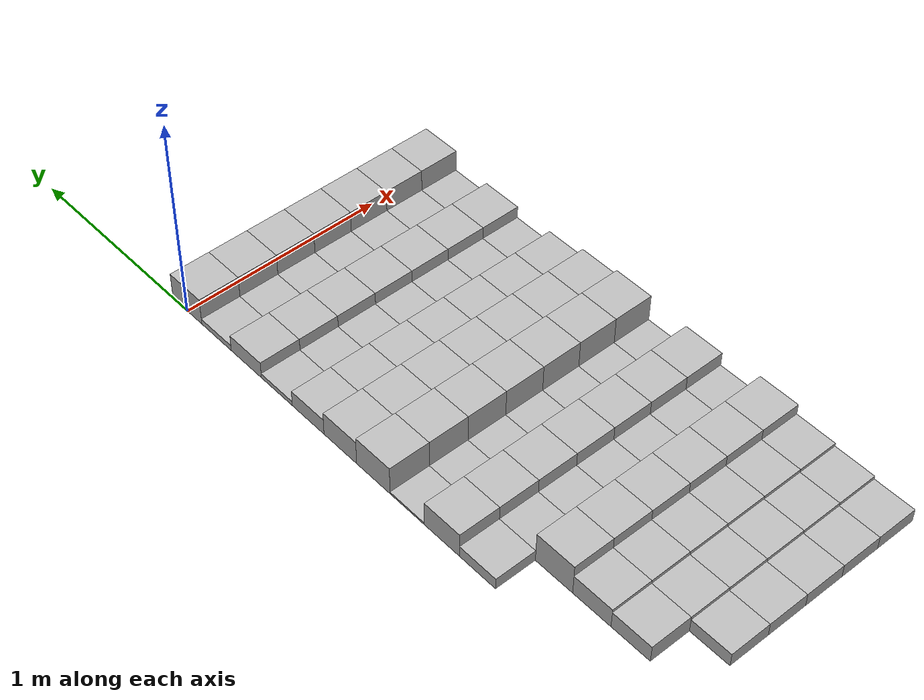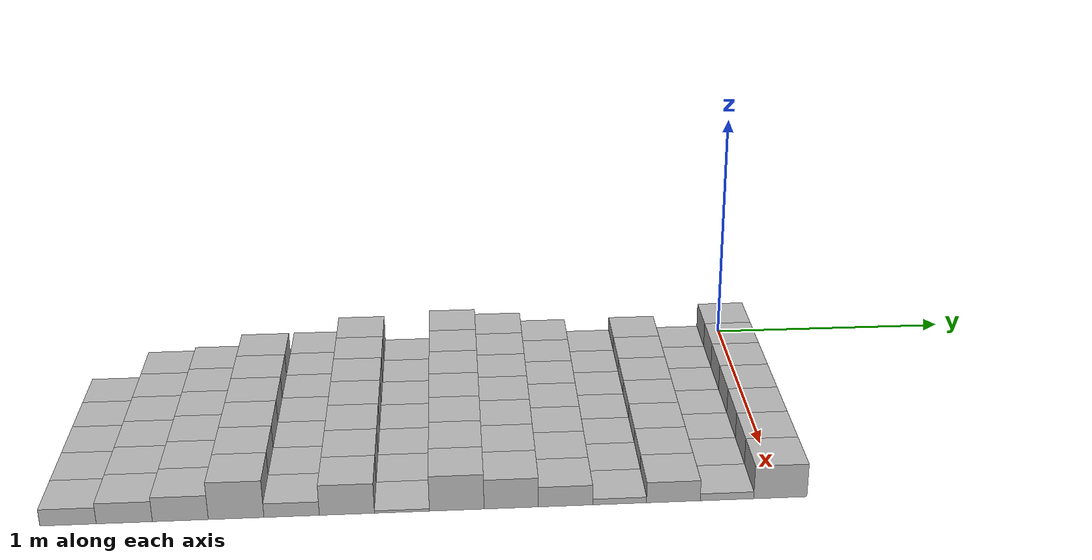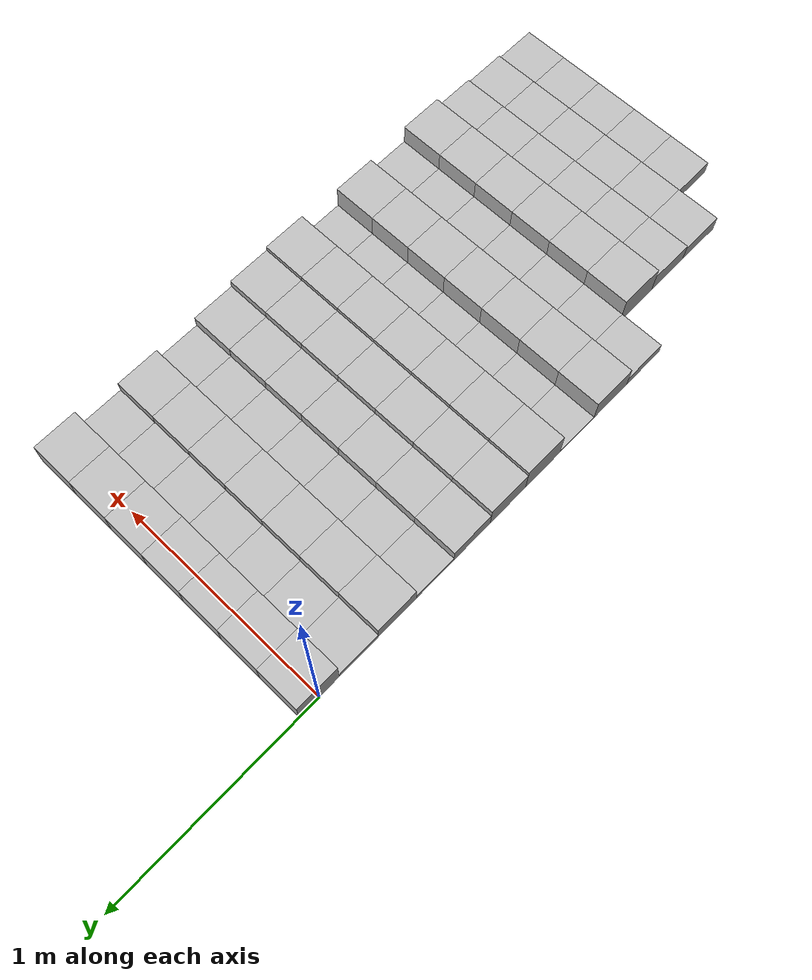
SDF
<sdf version="1.6">
 <model name="Terrain">
  <static>true</static>
  <link name="box_0_7">
   <pose>0.1 0.0 0.0700350616192 0 0 0</pose>
   <inertial>
    <mass>1.0</mass>
    <inertia><ixx>0.0</ixx><ixy>0.0</ixy><ixz>0.0</ixz><iyy>0.0</iyy><iyz>0.0</iyz><izz>0.0</izz></inertia>
   </inertial>
   <collision name="collision"><geometry><box><size>0.2 0.2 0.140070123238</size></box></geometry></collision>
   <visual name="visual"><geometry><box><size>0.2 0.2 0.140070123238</size></box></geometry></visual>
  </link>
  <link name="box_0_8">
   <pose>0.3 0.0 0.0700350616192 0 0 0</pose>
   <inertial>
    <mass>1.0</mass>
    <inertia><ixx>0.0</ixx><ixy>0.0</ixy><ixz>0.0</ixz><iyy>0.0</iyy><iyz>0.0</iyz><izz>0.0</izz></inertia>
   </inertial>
   <collision name="collision"><geometry><box><size>0.2 0.2 0.140070123238</size></box></geometry></collision>
   <visual name="visual"><geometry><box><size>0.2 0.2 0.140070123238</size></box></geometry></visual>
  </link>
  <link name="box_0_9">
   <pose>0.5 0.0 0.0700350616192 0 0 0</pose>
   <inertial>
    <mass>1.0</mass>
    <inertia><ixx>0.0</ixx><ixy>0.0</ixy><ixz>0.0</ixz><iyy>0.0</iyy><iyz>0.0</iyz><izz>0.0</izz></inertia>
   </inertial>
   <collision name="collision"><geometry><box><size>0.2 0.2 0.140070123238</size></box></geometry></collision>
   <visual name="visual"><geometry><box><size>0.2 0.2 0.140070123238</size></box></geometry></visual>
  </link>
  <link name="box_0_10">
   <pose>0.7 0.0 0.0700350616192 0 0 0</pose>
   <inertial>
    <mass>1.0</mass>
    <inertia><ixx>0.0</ixx><ixy>0.0</ixy><ixz>0.0</ixz><iyy>0.0</iyy><iyz>0.0</iyz><izz>0.0</izz></inertia>
   </inertial>
   <collision name="collision"><geometry><box><size>0.2 0.2 0.140070123238</size></box></geometry></collision>
   <visual name="visual"><geometry><box><size>0.2 0.2 0.140070123238</size></box></geometry></visual>
  </link>
  <link name="box_0_11">
   <pose>0.9 0.0 0.0700350616192 0 0 0</pose>
   <inertial>
    <mass>1.0</mass>
    <inertia><ixx>0.0</ixx><ixy>0.0</ixy><ixz>0.0</ixz><iyy>0.0</iyy><iyz>0.0</iyz><izz>0.0</izz></inertia>
   </inertial>
   <collision name="collision"><geometry><box><size>0.2 0.2 0.140070123238</size></box></geometry></collision>
   <visual name="visual"><geometry><box><size>0.2 0.2 0.140070123238</size></box></geometry></visual>
  </link>
  <link name="box_0_12">
   <pose>1.1 0.0 0.0700350616192 0 0 0</pose>
   <inertial>
    <mass>1.0</mass>
    <inertia><ixx>0.0</ixx><ixy>0.0</ixy><ixz>0.0</ixz><iyy>0.0</iyy><iyz>0.0</iyz><izz>0.0</izz></inertia>
   </inertial>
   <collision name="collision"><geometry><box><size>0.2 0.2 0.140070123238</size></box></geometry></collision>
   <visual name="visual"><geometry><box><size>0.2 0.2 0.140070123238</size></box></geometry></visual>
  </link>
  <link name="box_0_13">
   <pose>1.3 0.0 0.0700350616192 0 0 0</pose>
   <inertial>
    <mass>1.0</mass>
    <inertia><ixx>0.0</ixx><ixy>0.0</ixy><ixz>0.0</ixz><iyy>0.0</iyy><iyz>0.0</iyz><izz>0.0</izz></inertia>
   </inertial>
   <collision name="collision"><geometry><box><size>0.2 0.2 0.140070123238</size></box></geometry></collision>
   <visual name="visual"><geometry><box><size>0.2 0.2 0.140070123238</size></box></geometry></visual>
  </link>
  <link name="box_1_7">
   <pose>0.1 -0.2 0.0147610610979 0 0 0</pose>
   <inertial>
    <mass>1.0</mass>
    <inertia><ixx>0.0</ixx><ixy>0.0</ixy><ixz>0.0</ixz><iyy>0.0</iyy><iyz>0.0</iyz><izz>0.0</izz></inertia>
   </inertial>
   <collision name="collision"><geometry><box><size>0.2 0.2 0.0295221221957</size></box></geometry></collision>
   <visual name="visual"><geometry><box><size>0.2 0.2 0.0295221221957</size></box></geometry></visual>
  </link>
  <link name="box_1_8">
   <pose>0.3 -0.2 0.0147610610979 0 0 0</pose>
   <inertial>
    <mass>1.0</mass>
    <inertia><ixx>0.0</ixx><ixy>0.0</ixy><ixz>0.0</ixz><iyy>0.0</iyy><iyz>0.0</iyz><izz>0.0</izz></inertia>
   </inertial>
   <collision name="collision"><geometry><box><size>0.2 0.2 0.0295221221957</size></box></geometry></collision>
   <visual name="visual"><geometry><box><size>0.2 0.2 0.0295221221957</size></box></geometry></visual>
  </link>
  <link name="box_1_9">
   <pose>0.5 -0.2 0.0147610610979 0 0 0</pose>
   <inertial>
    <mass>1.0</mass>
    <inertia><ixx>0.0</ixx><ixy>0.0</ixy><ixz>0.0</ixz><iyy>0.0</iyy><iyz>0.0</iyz><izz>0.0</izz></inertia>
   </inertial>
   <collision name="collision"><geometry><box><size>0.2 0.2 0.0295221221957</size></box></geometry></collision>
   <visual name="visual"><geometry><box><size>0.2 0.2 0.0295221221957</size></box></geometry></visual>
  </link>
  <link name="box_1_10">
   <pose>0.7 -0.2 0.0147610610979 0 0 0</pose>
   <inertial>
    <mass>1.0</mass>
    <inertia><ixx>0.0</ixx><ixy>0.0</ixy><ixz>0.0</ixz><iyy>0.0</iyy><iyz>0.0</iyz><izz>0.0</izz></inertia>
   </inertial>
   <collision name="collision"><geometry><box><size>0.2 0.2 0.0295221221957</size></box></geometry></collision>
   <visual name="visual"><geometry><box><size>0.2 0.2 0.0295221221957</size></box></geometry></visual>
  </link>
  <link name="box_1_11">
   <pose>0.9 -0.2 0.0147610610979 0 0 0</pose>
   <inertial>
    <mass>1.0</mass>
    <inertia><ixx>0.0</ixx><ixy>0.0</ixy><ixz>0.0</ixz><iyy>0.0</iyy><iyz>0.0</iyz><izz>0.0</izz></inertia>
   </inertial>
   <collision name="collision"><geometry><box><size>0.2 0.2 0.0295221221957</size></box></geometry></collision>
   <visual name="visual"><geometry><box><size>0.2 0.2 0.0295221221957</size></box></geometry></visual>
  </link>
  <link name="box_1_12">
   <pose>1.1 -0.2 0.0147610610979 0 0 0</pose>
   <inertial>
    <mass>1.0</mass>
    <inertia><ixx>0.0</ixx><ixy>0.0</ixy><ixz>0.0</ixz><iyy>0.0</iyy><iyz>0.0</iyz><izz>0.0</izz></inertia>
   </inertial>
   <collision name="collision"><geometry><box><size>0.2 0.2 0.0295221221957</size></box></geometry></collision>
   <visual name="visual"><geometry><box><size>0.2 0.2 0.0295221221957</size></box></geometry></visual>
  </link>
  <link name="box_1_13">
   <pose>1.3 -0.2 0.0147610610979 0 0 0</pose>
   <inertial>
    <mass>1.0</mass>
    <inertia><ixx>0.0</ixx><ixy>0.0</ixy><ixz>0.0</ixz><iyy>0.0</iyy><iyz>0.0</iyz><izz>0.0</izz></inertia>
   </inertial>
   <collision name="collision"><geometry><box><size>0.2 0.2 0.0295221221957</size></box></geometry></collision>
   <visual name="visual"><geometry><box><size>0.2 0.2 0.0295221221957</size></box></geometry></visual>
  </link>
  <link name="box_2_7">
   <pose>0.1 -0.4 0.0431147949159 0 0 0</pose>
   <inertial>
    <mass>1.0</mass>
    <inertia><ixx>0.0</ixx><ixy>0.0</ixy><ixz>0.0</ixz><iyy>0.0</iyy><iyz>0.0</iyz><izz>0.0</izz></inertia>
   </inertial>
   <collision name="collision"><geometry><box><size>0.2 0.2 0.0862295898317</size></box></geometry></collision>
   <visual name="visual"><geometry><box><size>0.2 0.2 0.0862295898317</size></box></geometry></visual>
  </link>
  <link name="box_2_8">
   <pose>0.3 -0.4 0.0431147949159 0 0 0</pose>
   <inertial>
    <mass>1.0</mass>
    <inertia><ixx>0.0</ixx><ixy>0.0</ixy><ixz>0.0</ixz><iyy>0.0</iyy><iyz>0.0</iyz><izz>0.0</izz></inertia>
   </inertial>
   <collision name="collision"><geometry><box><size>0.2 0.2 0.0862295898317</size></box></geometry></collision>
   <visual name="visual"><geometry><box><size>0.2 0.2 0.0862295898317</size></box></geometry></visual>
  </link>
  <link name="box_2_9">
   <pose>0.5 -0.4 0.0431147949159 0 0 0</pose>
   <inertial>
    <mass>1.0</mass>
    <inertia><ixx>0.0</ixx><ixy>0.0</ixy><ixz>0.0</ixz><iyy>0.0</iyy><iyz>0.0</iyz><izz>0.0</izz></inertia>
   </inertial>
   <collision name="collision"><geometry><box><size>0.2 0.2 0.0862295898317</size></box></geometry></collision>
   <visual name="visual"><geometry><box><size>0.2 0.2 0.0862295898317</size></box></geometry></visual>
  </link>
  <link name="box_2_10">
   <pose>0.7 -0.4 0.0431147949159 0 0 0</pose>
   <inertial>
    <mass>1.0</mass>
    <inertia><ixx>0.0</ixx><ixy>0.0</ixy><ixz>0.0</ixz><iyy>0.0</iyy><iyz>0.0</iyz><izz>0.0</izz></inertia>
   </inertial>
   <collision name="collision"><geometry><box><size>0.2 0.2 0.0862295898317</size></box></geometry></collision>
   <visual name="visual"><geometry><box><size>0.2 0.2 0.0862295898317</size></box></geometry></visual>
  </link>
  <link name="box_2_11">
   <pose>0.9 -0.4 0.0431147949159 0 0 0</pose>
   <inertial>
    <mass>1.0</mass>
    <inertia><ixx>0.0</ixx><ixy>0.0</ixy><ixz>0.0</ixz><iyy>0.0</iyy><iyz>0.0</iyz><izz>0.0</izz></inertia>
   </inertial>
   <collision name="collision"><geometry><box><size>0.2 0.2 0.0862295898317</size></box></geometry></collision>
   <visual name="visual"><geometry><box><size>0.2 0.2 0.0862295898317</size></box></geometry></visual>
  </link>
  <link name="box_2_12">
   <pose>1.1 -0.4 0.0431147949159 0 0 0</pose>
   <inertial>
    <mass>1.0</mass>
    <inertia><ixx>0.0</ixx><ixy>0.0</ixy><ixz>0.0</ixz><iyy>0.0</iyy><iyz>0.0</iyz><izz>0.0</izz></inertia>
   </inertial>
   <collision name="collision"><geometry><box><size>0.2 0.2 0.0862295898317</size></box></geometry></collision>
   <visual name="visual"><geometry><box><size>0.2 0.2 0.0862295898317</size></box></geometry></visual>
  </link>
  <link name="box_2_13">
   <pose>1.3 -0.4 0.0431147949159 0 0 0</pose>
   <inertial>
    <mass>1.0</mass>
    <inertia><ixx>0.0</ixx><ixy>0.0</ixy><ixz>0.0</ixz><iyy>0.0</iyy><iyz>0.0</iyz><izz>0.0</izz></inertia>
   </inertial>
   <collision name="collision"><geometry><box><size>0.2 0.2 0.0862295898317</size></box></geometry></collision>
   <visual name="visual"><geometry><box><size>0.2 0.2 0.0862295898317</size></box></geometry></visual>
  </link>
  <link name="box_3_7">
   <pose>0.1 -0.6 0.012055614394 0 0 0</pose>
   <inertial>
    <mass>1.0</mass>
    <inertia><ixx>0.0</ixx><ixy>0.0</ixy><ixz>0.0</ixz><iyy>0.0</iyy><iyz>0.0</iyz><izz>0.0</izz></inertia>
   </inertial>
   <collision name="collision"><geometry><box><size>0.2 0.2 0.024111228788</size></box></geometry></collision>
   <visual name="visual"><geometry><box><size>0.2 0.2 0.024111228788</size></box></geometry></visual>
  </link>
  <link name="box_3_8">
   <pose>0.3 -0.6 0.012055614394 0 0 0</pose>
   <inertial>
    <mass>1.0</mass>
    <inertia><ixx>0.0</ixx><ixy>0.0</ixy><ixz>0.0</ixz><iyy>0.0</iyy><iyz>0.0</iyz><izz>0.0</izz></inertia>
   </inertial>
   <collision name="collision"><geometry><box><size>0.2 0.2 0.024111228788</size></box></geometry></collision>
   <visual name="visual"><geometry><box><size>0.2 0.2 0.024111228788</size></box></geometry></visual>
  </link>
  <link name="box_3_9">
   <pose>0.5 -0.6 0.012055614394 0 0 0</pose>
   <inertial>
    <mass>1.0</mass>
    <inertia><ixx>0.0</ixx><ixy>0.0</ixy><ixz>0.0</ixz><iyy>0.0</iyy><iyz>0.0</iyz><izz>0.0</izz></inertia>
   </inertial>
   <collision name="collision"><geometry><box><size>0.2 0.2 0.024111228788</size></box></geometry></collision>
   <visual name="visual"><geometry><box><size>0.2 0.2 0.024111228788</size></box></geometry></visual>
  </link>
  <link name="box_3_10">
   <pose>0.7 -0.6 0.012055614394 0 0 0</pose>
   <inertial>
    <mass>1.0</mass>
    <inertia><ixx>0.0</ixx><ixy>0.0</ixy><ixz>0.0</ixz><iyy>0.0</iyy><iyz>0.0</iyz><izz>0.0</izz></inertia>
   </inertial>
   <collision name="collision"><geometry><box><size>0.2 0.2 0.024111228788</size></box></geometry></collision>
   <visual name="visual"><geometry><box><size>0.2 0.2 0.024111228788</size></box></geometry></visual>
  </link>
  <link name="box_3_11">
   <pose>0.9 -0.6 0.012055614394 0 0 0</pose>
   <inertial>
    <mass>1.0</mass>
    <inertia><ixx>0.0</ixx><ixy>0.0</ixy><ixz>0.0</ixz><iyy>0.0</iyy><iyz>0.0</iyz><izz>0.0</izz></inertia>
   </inertial>
   <collision name="collision"><geometry><box><size>0.2 0.2 0.024111228788</size></box></geometry></collision>
   <visual name="visual"><geometry><box><size>0.2 0.2 0.024111228788</size></box></geometry></visual>
  </link>
  <link name="box_3_12">
   <pose>1.1 -0.6 0.012055614394 0 0 0</pose>
   <inertial>
    <mass>1.0</mass>
    <inertia><ixx>0.0</ixx><ixy>0.0</ixy><ixz>0.0</ixz><iyy>0.0</iyy><iyz>0.0</iyz><izz>0.0</izz></inertia>
   </inertial>
   <collision name="collision"><geometry><box><size>0.2 0.2 0.024111228788</size></box></geometry></collision>
   <visual name="visual"><geometry><box><size>0.2 0.2 0.024111228788</size></box></geometry></visual>
  </link>
  <link name="box_3_13">
   <pose>1.3 -0.6 0.012055614394 0 0 0</pose>
   <inertial>
    <mass>1.0</mass>
    <inertia><ixx>0.0</ixx><ixy>0.0</ixy><ixz>0.0</ixz><iyy>0.0</iyy><iyz>0.0</iyz><izz>0.0</izz></inertia>
   </inertial>
   <collision name="collision"><geometry><box><size>0.2 0.2 0.024111228788</size></box></geometry></collision>
   <visual name="visual"><geometry><box><size>0.2 0.2 0.024111228788</size></box></geometry></visual>
  </link>
  <link name="box_4_7">
   <pose>0.1 -0.8 0.0417228613779 0 0 0</pose>
   <inertial>
    <mass>1.0</mass>
    <inertia><ixx>0.0</ixx><ixy>0.0</ixy><ixz>0.0</ixz><iyy>0.0</iyy><iyz>0.0</iyz><izz>0.0</izz></inertia>
   </inertial>
   <collision name="collision"><geometry><box><size>0.2 0.2 0.0834457227559</size></box></geometry></collision>
   <visual name="visual"><geometry><box><size>0.2 0.2 0.0834457227559</size></box></geometry></visual>
  </link>
  <link name="box_4_8">
   <pose>0.3 -0.8 0.0417228613779 0 0 0</pose>
   <inertial>
    <mass>1.0</mass>
    <inertia><ixx>0.0</ixx><ixy>0.0</ixy><ixz>0.0</ixz><iyy>0.0</iyy><iyz>0.0</iyz><izz>0.0</izz></inertia>
   </inertial>
   <collision name="collision"><geometry><box><size>0.2 0.2 0.0834457227559</size></box></geometry></collision>
   <visual name="visual"><geometry><box><size>0.2 0.2 0.0834457227559</size></box></geometry></visual>
  </link>
  <link name="box_4_9">
   <pose>0.5 -0.8 0.0417228613779 0 0 0</pose>
   <inertial>
    <mass>1.0</mass>
    <inertia><ixx>0.0</ixx><ixy>0.0</ixy><ixz>0.0</ixz><iyy>0.0</iyy><iyz>0.0</iyz><izz>0.0</izz></inertia>
   </inertial>
   <collision name="collision"><geometry><box><size>0.2 0.2 0.0834457227559</size></box></geometry></collision>
   <visual name="visual"><geometry><box><size>0.2 0.2 0.0834457227559</size></box></geometry></visual>
  </link>
  <link name="box_4_10">
   <pose>0.7 -0.8 0.0417228613779 0 0 0</pose>
   <inertial>
    <mass>1.0</mass>
    <inertia><ixx>0.0</ixx><ixy>0.0</ixy><ixz>0.0</ixz><iyy>0.0</iyy><iyz>0.0</iyz><izz>0.0</izz></inertia>
   </inertial>
   <collision name="collision"><geometry><box><size>0.2 0.2 0.0834457227559</size></box></geometry></collision>
   <visual name="visual"><geometry><box><size>0.2 0.2 0.0834457227559</size></box></geometry></visual>
  </link>
  <link name="box_4_11">
   <pose>0.9 -0.8 0.0417228613779 0 0 0</pose>
   <inertial>
    <mass>1.0</mass>
    <inertia><ixx>0.0</ixx><ixy>0.0</ixy><ixz>0.0</ixz><iyy>0.0</iyy><iyz>0.0</iyz><izz>0.0</izz></inertia>
   </inertial>
   <collision name="collision"><geometry><box><size>0.2 0.2 0.0834457227559</size></box></geometry></collision>
   <visual name="visual"><geometry><box><size>0.2 0.2 0.0834457227559</size></box></geometry></visual>
  </link>
  <link name="box_4_12">
   <pose>1.1 -0.8 0.0417228613779 0 0 0</pose>
   <inertial>
    <mass>1.0</mass>
    <inertia><ixx>0.0</ixx><ixy>0.0</ixy><ixz>0.0</ixz><iyy>0.0</iyy><iyz>0.0</iyz><izz>0.0</izz></inertia>
   </inertial>
   <collision name="collision"><geometry><box><size>0.2 0.2 0.0834457227559</size></box></geometry></collision>
   <visual name="visual"><geometry><box><size>0.2 0.2 0.0834457227559</size></box></geometry></visual>
  </link>
  <link name="box_4_13">
   <pose>1.3 -0.8 0.0417228613779 0 0 0</pose>
   <inertial>
    <mass>1.0</mass>
    <inertia><ixx>0.0</ixx><ixy>0.0</ixy><ixz>0.0</ixz><iyy>0.0</iyy><iyz>0.0</iyz><izz>0.0</izz></inertia>
   </inertial>
   <collision name="collision"><geometry><box><size>0.2 0.2 0.0834457227559</size></box></geometry></collision>
   <visual name="visual"><geometry><box><size>0.2 0.2 0.0834457227559</size></box></geometry></visual>
  </link>
  <link name="box_5_7">
   <pose>0.1 -1.0 0.0614715375095 0 0 0</pose>
   <inertial>
    <mass>1.0</mass>
    <inertia><ixx>0.0</ixx><ixy>0.0</ixy><ixz>0.0</ixz><iyy>0.0</iyy><iyz>0.0</iyz><izz>0.0</izz></inertia>
   </inertial>
   <collision name="collision"><geometry><box><size>0.2 0.2 0.122943075019</size></box></geometry></collision>
   <visual name="visual"><geometry><box><size>0.2 0.2 0.122943075019</size></box></geometry></visual>
  </link>
  <link name="box_5_8">
   <pose>0.3 -1.0 0.0614715375095 0 0 0</pose>
   <inertial>
    <mass>1.0</mass>
    <inertia><ixx>0.0</ixx><ixy>0.0</ixy><ixz>0.0</ixz><iyy>0.0</iyy><iyz>0.0</iyz><izz>0.0</izz></inertia>
   </inertial>
   <collision name="collision"><geometry><box><size>0.2 0.2 0.122943075019</size></box></geometry></collision>
   <visual name="visual"><geometry><box><size>0.2 0.2 0.122943075019</size></box></geometry></visual>
  </link>
  <link name="box_5_9">
   <pose>0.5 -1.0 0.0614715375095 0 0 0</pose>
   <inertial>
    <mass>1.0</mass>
    <inertia><ixx>0.0</ixx><ixy>0.0</ixy><ixz>0.0</ixz><iyy>0.0</iyy><iyz>0.0</iyz><izz>0.0</izz></inertia>
   </inertial>
   <collision name="collision"><geometry><box><size>0.2 0.2 0.122943075019</size></box></geometry></collision>
   <visual name="visual"><geometry><box><size>0.2 0.2 0.122943075019</size></box></geometry></visual>
  </link>
  <link name="box_5_10">
   <pose>0.7 -1.0 0.0614715375095 0 0 0</pose>
   <inertial>
    <mass>1.0</mass>
    <inertia><ixx>0.0</ixx><ixy>0.0</ixy><ixz>0.0</ixz><iyy>0.0</iyy><iyz>0.0</iyz><izz>0.0</izz></inertia>
   </inertial>
   <collision name="collision"><geometry><box><size>0.2 0.2 0.122943075019</size></box></geometry></collision>
   <visual name="visual"><geometry><box><size>0.2 0.2 0.122943075019</size></box></geometry></visual>
  </link>
  <link name="box_5_11">
   <pose>0.9 -1.0 0.0614715375095 0 0 0</pose>
   <inertial>
    <mass>1.0</mass>
    <inertia><ixx>0.0</ixx><ixy>0.0</ixy><ixz>0.0</ixz><iyy>0.0</iyy><iyz>0.0</iyz><izz>0.0</izz></inertia>
   </inertial>
   <collision name="collision"><geometry><box><size>0.2 0.2 0.122943075019</size></box></geometry></collision>
   <visual name="visual"><geometry><box><size>0.2 0.2 0.122943075019</size></box></geometry></visual>
  </link>
  <link name="box_5_12">
   <pose>1.1 -1.0 0.0614715375095 0 0 0</pose>
   <inertial>
    <mass>1.0</mass>
    <inertia><ixx>0.0</ixx><ixy>0.0</ixy><ixz>0.0</ixz><iyy>0.0</iyy><iyz>0.0</iyz><izz>0.0</izz></inertia>
   </inertial>
   <collision name="collision"><geometry><box><size>0.2 0.2 0.122943075019</size></box></geometry></collision>
   <visual name="visual"><geometry><box><size>0.2 0.2 0.122943075019</size></box></geometry></visual>
  </link>
  <link name="box_5_13">
   <pose>1.3 -1.0 0.0614715375095 0 0 0</pose>
   <inertial>
    <mass>1.0</mass>
    <inertia><ixx>0.0</ixx><ixy>0.0</ixy><ixz>0.0</ixz><iyy>0.0</iyy><iyz>0.0</iyz><izz>0.0</izz></inertia>
   </inertial>
   <collision name="collision"><geometry><box><size>0.2 0.2 0.122943075019</size></box></geometry></collision>
   <visual name="visual"><geometry><box><size>0.2 0.2 0.122943075019</size></box></geometry></visual>
  </link>
  <link name="box_6_7">
   <pose>0.1 -1.2 0.0731963180376 0 0 0</pose>
   <inertial>
    <mass>1.0</mass>
    <inertia><ixx>0.0</ixx><ixy>0.0</ixy><ixz>0.0</ixz><iyy>0.0</iyy><iyz>0.0</iyz><izz>0.0</izz></inertia>
   </inertial>
   <collision name="collision"><geometry><box><size>0.2 0.2 0.146392636075</size></box></geometry></collision>
   <visual name="visual"><geometry><box><size>0.2 0.2 0.146392636075</size></box></geometry></visual>
  </link>
  <link name="box_6_8">
   <pose>0.3 -1.2 0.0731963180376 0 0 0</pose>
   <inertial>
    <mass>1.0</mass>
    <inertia><ixx>0.0</ixx><ixy>0.0</ixy><ixz>0.0</ixz><iyy>0.0</iyy><iyz>0.0</iyz><izz>0.0</izz></inertia>
   </inertial>
   <collision name="collision"><geometry><box><size>0.2 0.2 0.146392636075</size></box></geometry></collision>
   <visual name="visual"><geometry><box><size>0.2 0.2 0.146392636075</size></box></geometry></visual>
  </link>
  <link name="box_6_9">
   <pose>0.5 -1.2 0.0731963180376 0 0 0</pose>
   <inertial>
    <mass>1.0</mass>
    <inertia><ixx>0.0</ixx><ixy>0.0</ixy><ixz>0.0</ixz><iyy>0.0</iyy><iyz>0.0</iyz><izz>0.0</izz></inertia>
   </inertial>
   <collision name="collision"><geometry><box><size>0.2 0.2 0.146392636075</size></box></geometry></collision>
   <visual name="visual"><geometry><box><size>0.2 0.2 0.146392636075</size></box></geometry></visual>
  </link>
  <link name="box_6_10">
   <pose>0.7 -1.2 0.0731963180376 0 0 0</pose>
   <inertial>
    <mass>1.0</mass>
    <inertia><ixx>0.0</ixx><ixy>0.0</ixy><ixz>0.0</ixz><iyy>0.0</iyy><iyz>0.0</iyz><izz>0.0</izz></inertia>
   </inertial>
   <collision name="collision"><geometry><box><size>0.2 0.2 0.146392636075</size></box></geometry></collision>
   <visual name="visual"><geometry><box><size>0.2 0.2 0.146392636075</size></box></geometry></visual>
  </link>
  <link name="box_6_11">
   <pose>0.9 -1.2 0.0731963180376 0 0 0</pose>
   <inertial>
    <mass>1.0</mass>
    <inertia><ixx>0.0</ixx><ixy>0.0</ixy><ixz>0.0</ixz><iyy>0.0</iyy><iyz>0.0</iyz><izz>0.0</izz></inertia>
   </inertial>
   <collision name="collision"><geometry><box><size>0.2 0.2 0.146392636075</size></box></geometry></collision>
   <visual name="visual"><geometry><box><size>0.2 0.2 0.146392636075</size></box></geometry></visual>
  </link>
  <link name="box_6_12">
   <pose>1.1 -1.2 0.0731963180376 0 0 0</pose>
   <inertial>
    <mass>1.0</mass>
    <inertia><ixx>0.0</ixx><ixy>0.0</ixy><ixz>0.0</ixz><iyy>0.0</iyy><iyz>0.0</iyz><izz>0.0</izz></inertia>
   </inertial>
   <collision name="collision"><geometry><box><size>0.2 0.2 0.146392636075</size></box></geometry></collision>
   <visual name="visual"><geometry><box><size>0.2 0.2 0.146392636075</size></box></geometry></visual>
  </link>
  <link name="box_6_13">
   <pose>1.3 -1.2 0.0731963180376 0 0 0</pose>
   <inertial>
    <mass>1.0</mass>
    <inertia><ixx>0.0</ixx><ixy>0.0</ixy><ixz>0.0</ixz><iyy>0.0</iyy><iyz>0.0</iyz><izz>0.0</izz></inertia>
   </inertial>
   <collision name="collision"><geometry><box><size>0.2 0.2 0.146392636075</size></box></geometry></collision>
   <visual name="visual"><geometry><box><size>0.2 0.2 0.146392636075</size></box></geometry></visual>
  </link>
  <link name="box_7_7">
   <pose>0.1 -1.4 0.0048451124713 0 0 0</pose>
   <inertial>
    <mass>1.0</mass>
    <inertia><ixx>0.0</ixx><ixy>0.0</ixy><ixz>0.0</ixz><iyy>0.0</iyy><iyz>0.0</iyz><izz>0.0</izz></inertia>
   </inertial>
   <collision name="collision"><geometry><box><size>0.2 0.2 0.00969022494259</size></box></geometry></collision>
   <visual name="visual"><geometry><box><size>0.2 0.2 0.00969022494259</size></box></geometry></visual>
  </link>
  <link name="box_7_8">
   <pose>0.3 -1.4 0.0048451124713 0 0 0</pose>
   <inertial>
    <mass>1.0</mass>
    <inertia><ixx>0.0</ixx><ixy>0.0</ixy><ixz>0.0</ixz><iyy>0.0</iyy><iyz>0.0</iyz><izz>0.0</izz></inertia>
   </inertial>
   <collision name="collision"><geometry><box><size>0.2 0.2 0.00969022494259</size></box></geometry></collision>
   <visual name="visual"><geometry><box><size>0.2 0.2 0.00969022494259</size></box></geometry></visual>
  </link>
  <link name="box_7_9">
   <pose>0.5 -1.4 0.0048451124713 0 0 0</pose>
   <inertial>
    <mass>1.0</mass>
    <inertia><ixx>0.0</ixx><ixy>0.0</ixy><ixz>0.0</ixz><iyy>0.0</iyy><iyz>0.0</iyz><izz>0.0</izz></inertia>
   </inertial>
   <collision name="collision"><geometry><box><size>0.2 0.2 0.00969022494259</size></box></geometry></collision>
   <visual name="visual"><geometry><box><size>0.2 0.2 0.00969022494259</size></box></geometry></visual>
  </link>
  <link name="box_7_10">
   <pose>0.7 -1.4 0.0048451124713 0 0 0</pose>
   <inertial>
    <mass>1.0</mass>
    <inertia><ixx>0.0</ixx><ixy>0.0</ixy><ixz>0.0</ixz><iyy>0.0</iyy><iyz>0.0</iyz><izz>0.0</izz></inertia>
   </inertial>
   <collision name="collision"><geometry><box><size>0.2 0.2 0.00969022494259</size></box></geometry></collision>
   <visual name="visual"><geometry><box><size>0.2 0.2 0.00969022494259</size></box></geometry></visual>
  </link>
  <link name="box_7_11">
   <pose>0.9 -1.4 0.0048451124713 0 0 0</pose>
   <inertial>
    <mass>1.0</mass>
    <inertia><ixx>0.0</ixx><ixy>0.0</ixy><ixz>0.0</ixz><iyy>0.0</iyy><iyz>0.0</iyz><izz>0.0</izz></inertia>
   </inertial>
   <collision name="collision"><geometry><box><size>0.2 0.2 0.00969022494259</size></box></geometry></collision>
   <visual name="visual"><geometry><box><size>0.2 0.2 0.00969022494259</size></box></geometry></visual>
  </link>
  <link name="box_7_12">
   <pose>1.1 -1.4 0.0048451124713 0 0 0</pose>
   <inertial>
    <mass>1.0</mass>
    <inertia><ixx>0.0</ixx><ixy>0.0</ixy><ixz>0.0</ixz><iyy>0.0</iyy><iyz>0.0</iyz><izz>0.0</izz></inertia>
   </inertial>
   <collision name="collision"><geometry><box><size>0.2 0.2 0.00969022494259</size></box></geometry></collision>
   <visual name="visual"><geometry><box><size>0.2 0.2 0.00969022494259</size></box></geometry></visual>
  </link>
  <link name="box_7_13">
   <pose>1.3 -1.4 0.0048451124713 0 0 0</pose>
   <inertial>
    <mass>1.0</mass>
    <inertia><ixx>0.0</ixx><ixy>0.0</ixy><ixz>0.0</ixz><iyy>0.0</iyy><iyz>0.0</iyz><izz>0.0</izz></inertia>
   </inertial>
   <collision name="collision"><geometry><box><size>0.2 0.2 0.00969022494259</size></box></geometry></collision>
   <visual name="visual"><geometry><box><size>0.2 0.2 0.00969022494259</size></box></geometry></visual>
  </link>
  <link name="box_8_7">
   <pose>0.1 -1.6 0.0628663034873 0 0 0</pose>
   <inertial>
    <mass>1.0</mass>
    <inertia><ixx>0.0</ixx><ixy>0.0</ixy><ixz>0.0</ixz><iyy>0.0</iyy><iyz>0.0</iyz><izz>0.0</izz></inertia>
   </inertial>
   <collision name="collision"><geometry><box><size>0.2 0.2 0.125732606975</size></box></geometry></collision>
   <visual name="visual"><geometry><box><size>0.2 0.2 0.125732606975</size></box></geometry></visual>
  </link>
  <link name="box_8_8">
   <pose>0.3 -1.6 0.0628663034873 0 0 0</pose>
   <inertial>
    <mass>1.0</mass>
    <inertia><ixx>0.0</ixx><ixy>0.0</ixy><ixz>0.0</ixz><iyy>0.0</iyy><iyz>0.0</iyz><izz>0.0</izz></inertia>
   </inertial>
   <collision name="collision"><geometry><box><size>0.2 0.2 0.125732606975</size></box></geometry></collision>
   <visual name="visual"><geometry><box><size>0.2 0.2 0.125732606975</size></box></geometry></visual>
  </link>
  <link name="box_8_9">
   <pose>0.5 -1.6 0.0628663034873 0 0 0</pose>
   <inertial>
    <mass>1.0</mass>
    <inertia><ixx>0.0</ixx><ixy>0.0</ixy><ixz>0.0</ixz><iyy>0.0</iyy><iyz>0.0</iyz><izz>0.0</izz></inertia>
   </inertial>
   <collision name="collision"><geometry><box><size>0.2 0.2 0.125732606975</size></box></geometry></collision>
   <visual name="visual"><geometry><box><size>0.2 0.2 0.125732606975</size></box></geometry></visual>
  </link>
  <link name="box_8_10">
   <pose>0.7 -1.6 0.0628663034873 0 0 0</pose>
   <inertial>
    <mass>1.0</mass>
    <inertia><ixx>0.0</ixx><ixy>0.0</ixy><ixz>0.0</ixz><iyy>0.0</iyy><iyz>0.0</iyz><izz>0.0</izz></inertia>
   </inertial>
   <collision name="collision"><geometry><box><size>0.2 0.2 0.125732606975</size></box></geometry></collision>
   <visual name="visual"><geometry><box><size>0.2 0.2 0.125732606975</size></box></geometry></visual>
  </link>
  <link name="box_8_11">
   <pose>0.9 -1.6 0.0628663034873 0 0 0</pose>
   <inertial>
    <mass>1.0</mass>
    <inertia><ixx>0.0</ixx><ixy>0.0</ixy><ixz>0.0</ixz><iyy>0.0</iyy><iyz>0.0</iyz><izz>0.0</izz></inertia>
   </inertial>
   <collision name="collision"><geometry><box><size>0.2 0.2 0.125732606975</size></box></geometry></collision>
   <visual name="visual"><geometry><box><size>0.2 0.2 0.125732606975</size></box></geometry></visual>
  </link>
  <link name="box_8_12">
   <pose>1.1 -1.6 0.0628663034873 0 0 0</pose>
   <inertial>
    <mass>1.0</mass>
    <inertia><ixx>0.0</ixx><ixy>0.0</ixy><ixz>0.0</ixz><iyy>0.0</iyy><iyz>0.0</iyz><izz>0.0</izz></inertia>
   </inertial>
   <collision name="collision"><geometry><box><size>0.2 0.2 0.125732606975</size></box></geometry></collision>
   <visual name="visual"><geometry><box><size>0.2 0.2 0.125732606975</size></box></geometry></visual>
  </link>
  <link name="box_8_13">
   <pose>1.3 -1.6 0.0628663034873 0 0 0</pose>
   <inertial>
    <mass>1.0</mass>
    <inertia><ixx>0.0</ixx><ixy>0.0</ixy><ixz>0.0</ixz><iyy>0.0</iyy><iyz>0.0</iyz><izz>0.0</izz></inertia>
   </inertial>
   <collision name="collision"><geometry><box><size>0.2 0.2 0.125732606975</size></box></geometry></collision>
   <visual name="visual"><geometry><box><size>0.2 0.2 0.125732606975</size></box></geometry></visual>
  </link>
  <link name="box_9_7">
   <pose>0.1 -1.8 0.0287414447387 0 0 0</pose>
   <inertial>
    <mass>1.0</mass>
    <inertia><ixx>0.0</ixx><ixy>0.0</ixy><ixz>0.0</ixz><iyy>0.0</iyy><iyz>0.0</iyz><izz>0.0</izz></inertia>
   </inertial>
   <collision name="collision"><geometry><box><size>0.2 0.2 0.0574828894773</size></box></geometry></collision>
   <visual name="visual"><geometry><box><size>0.2 0.2 0.0574828894773</size></box></geometry></visual>
  </link>
  <link name="box_9_8">
   <pose>0.3 -1.8 0.0287414447387 0 0 0</pose>
   <inertial>
    <mass>1.0</mass>
    <inertia><ixx>0.0</ixx><ixy>0.0</ixy><ixz>0.0</ixz><iyy>0.0</iyy><iyz>0.0</iyz><izz>0.0</izz></inertia>
   </inertial>
   <collision name="collision"><geometry><box><size>0.2 0.2 0.0574828894773</size></box></geometry></collision>
   <visual name="visual"><geometry><box><size>0.2 0.2 0.0574828894773</size></box></geometry></visual>
  </link>
  <link name="box_9_9">
   <pose>0.5 -1.8 0.0287414447387 0 0 0</pose>
   <inertial>
    <mass>1.0</mass>
    <inertia><ixx>0.0</ixx><ixy>0.0</ixy><ixz>0.0</ixz><iyy>0.0</iyy><iyz>0.0</iyz><izz>0.0</izz></inertia>
   </inertial>
   <collision name="collision"><geometry><box><size>0.2 0.2 0.0574828894773</size></box></geometry></collision>
   <visual name="visual"><geometry><box><size>0.2 0.2 0.0574828894773</size></box></geometry></visual>
  </link>
  <link name="box_9_10">
   <pose>0.7 -1.8 0.0287414447387 0 0 0</pose>
   <inertial>
    <mass>1.0</mass>
    <inertia><ixx>0.0</ixx><ixy>0.0</ixy><ixz>0.0</ixz><iyy>0.0</iyy><iyz>0.0</iyz><izz>0.0</izz></inertia>
   </inertial>
   <collision name="collision"><geometry><box><size>0.2 0.2 0.0574828894773</size></box></geometry></collision>
   <visual name="visual"><geometry><box><size>0.2 0.2 0.0574828894773</size></box></geometry></visual>
  </link>
  <link name="box_9_11">
   <pose>0.9 -1.8 0.0287414447387 0 0 0</pose>
   <inertial>
    <mass>1.0</mass>
    <inertia><ixx>0.0</ixx><ixy>0.0</ixy><ixz>0.0</ixz><iyy>0.0</iyy><iyz>0.0</iyz><izz>0.0</izz></inertia>
   </inertial>
   <collision name="collision"><geometry><box><size>0.2 0.2 0.0574828894773</size></box></geometry></collision>
   <visual name="visual"><geometry><box><size>0.2 0.2 0.0574828894773</size></box></geometry></visual>
  </link>
  <link name="box_9_12">
   <pose>1.1 -1.8 0.0287414447387 0 0 0</pose>
   <inertial>
    <mass>1.0</mass>
    <inertia><ixx>0.0</ixx><ixy>0.0</ixy><ixz>0.0</ixz><iyy>0.0</iyy><iyz>0.0</iyz><izz>0.0</izz></inertia>
   </inertial>
   <collision name="collision"><geometry><box><size>0.2 0.2 0.0574828894773</size></box></geometry></collision>
   <visual name="visual"><geometry><box><size>0.2 0.2 0.0574828894773</size></box></geometry></visual>
  </link>
  <link name="box_9_13">
   <pose>1.3 -1.8 0.0287414447387 0 0 0</pose>
   <inertial>
    <mass>1.0</mass>
    <inertia><ixx>0.0</ixx><ixy>0.0</ixy><ixz>0.0</ixz><iyy>0.0</iyy><iyz>0.0</iyz><izz>0.0</izz></inertia>
   </inertial>
   <collision name="collision"><geometry><box><size>0.2 0.2 0.0574828894773</size></box></geometry></collision>
   <visual name="visual"><geometry><box><size>0.2 0.2 0.0574828894773</size></box></geometry></visual>
  </link>
  <link name="box_10_8">
   <pose>0.3 -2.0 0.0772554402192 0 0 0</pose>
   <inertial>
    <mass>1.0</mass>
    <inertia><ixx>0.0</ixx><ixy>0.0</ixy><ixz>0.0</ixz><iyy>0.0</iyy><iyz>0.0</iyz><izz>0.0</izz></inertia>
   </inertial>
   <collision name="collision"><geometry><box><size>0.2 0.2 0.154510880438</size></box></geometry></collision>
   <visual name="visual"><geometry><box><size>0.2 0.2 0.154510880438</size></box></geometry></visual>
  </link>
  <link name="box_10_9">
   <pose>0.5 -2.0 0.0772554402192 0 0 0</pose>
   <inertial>
    <mass>1.0</mass>
    <inertia><ixx>0.0</ixx><ixy>0.0</ixy><ixz>0.0</ixz><iyy>0.0</iyy><iyz>0.0</iyz><izz>0.0</izz></inertia>
   </inertial>
   <collision name="collision"><geometry><box><size>0.2 0.2 0.154510880438</size></box></geometry></collision>
   <visual name="visual"><geometry><box><size>0.2 0.2 0.154510880438</size></box></geometry></visual>
  </link>
  <link name="box_10_10">
   <pose>0.7 -2.0 0.0772554402192 0 0 0</pose>
   <inertial>
    <mass>1.0</mass>
    <inertia><ixx>0.0</ixx><ixy>0.0</ixy><ixz>0.0</ixz><iyy>0.0</iyy><iyz>0.0</iyz><izz>0.0</izz></inertia>
   </inertial>
   <collision name="collision"><geometry><box><size>0.2 0.2 0.154510880438</size></box></geometry></collision>
   <visual name="visual"><geometry><box><size>0.2 0.2 0.154510880438</size></box></geometry></visual>
  </link>
  <link name="box_10_11">
   <pose>0.9 -2.0 0.0772554402192 0 0 0</pose>
   <inertial>
    <mass>1.0</mass>
    <inertia><ixx>0.0</ixx><ixy>0.0</ixy><ixz>0.0</ixz><iyy>0.0</iyy><iyz>0.0</iyz><izz>0.0</izz></inertia>
   </inertial>
   <collision name="collision"><geometry><box><size>0.2 0.2 0.154510880438</size></box></geometry></collision>
   <visual name="visual"><geometry><box><size>0.2 0.2 0.154510880438</size></box></geometry></visual>
  </link>
  <link name="box_10_12">
   <pose>1.1 -2.0 0.0772554402192 0 0 0</pose>
   <inertial>
    <mass>1.0</mass>
    <inertia><ixx>0.0</ixx><ixy>0.0</ixy><ixz>0.0</ixz><iyy>0.0</iyy><iyz>0.0</iyz><izz>0.0</izz></inertia>
   </inertial>
   <collision name="collision"><geometry><box><size>0.2 0.2 0.154510880438</size></box></geometry></collision>
   <visual name="visual"><geometry><box><size>0.2 0.2 0.154510880438</size></box></geometry></visual>
  </link>
  <link name="box_10_13">
   <pose>1.3 -2.0 0.0772554402192 0 0 0</pose>
   <inertial>
    <mass>1.0</mass>
    <inertia><ixx>0.0</ixx><ixy>0.0</ixy><ixz>0.0</ixz><iyy>0.0</iyy><iyz>0.0</iyz><izz>0.0</izz></inertia>
   </inertial>
   <collision name="collision"><geometry><box><size>0.2 0.2 0.154510880438</size></box></geometry></collision>
   <visual name="visual"><geometry><box><size>0.2 0.2 0.154510880438</size></box></geometry></visual>
  </link>
  <link name="box_11_8">
   <pose>0.3 -2.2 0.0504164122524 0 0 0</pose>
   <inertial>
    <mass>1.0</mass>
    <inertia><ixx>0.0</ixx><ixy>0.0</ixy><ixz>0.0</ixz><iyy>0.0</iyy><iyz>0.0</iyz><izz>0.0</izz></inertia>
   </inertial>
   <collision name="collision"><geometry><box><size>0.2 0.2 0.100832824505</size></box></geometry></collision>
   <visual name="visual"><geometry><box><size>0.2 0.2 0.100832824505</size></box></geometry></visual>
  </link>
  <link name="box_11_9">
   <pose>0.5 -2.2 0.0504164122524 0 0 0</pose>
   <inertial>
    <mass>1.0</mass>
    <inertia><ixx>0.0</ixx><ixy>0.0</ixy><ixz>0.0</ixz><iyy>0.0</iyy><iyz>0.0</iyz><izz>0.0</izz></inertia>
   </inertial>
   <collision name="collision"><geometry><box><size>0.2 0.2 0.100832824505</size></box></geometry></collision>
   <visual name="visual"><geometry><box><size>0.2 0.2 0.100832824505</size></box></geometry></visual>
  </link>
  <link name="box_11_10">
   <pose>0.7 -2.2 0.0504164122524 0 0 0</pose>
   <inertial>
    <mass>1.0</mass>
    <inertia><ixx>0.0</ixx><ixy>0.0</ixy><ixz>0.0</ixz><iyy>0.0</iyy><iyz>0.0</iyz><izz>0.0</izz></inertia>
   </inertial>
   <collision name="collision"><geometry><box><size>0.2 0.2 0.100832824505</size></box></geometry></collision>
   <visual name="visual"><geometry><box><size>0.2 0.2 0.100832824505</size></box></geometry></visual>
  </link>
  <link name="box_11_11">
   <pose>0.9 -2.2 0.0504164122524 0 0 0</pose>
   <inertial>
    <mass>1.0</mass>
    <inertia><ixx>0.0</ixx><ixy>0.0</ixy><ixz>0.0</ixz><iyy>0.0</iyy><iyz>0.0</iyz><izz>0.0</izz></inertia>
   </inertial>
   <collision name="collision"><geometry><box><size>0.2 0.2 0.100832824505</size></box></geometry></collision>
   <visual name="visual"><geometry><box><size>0.2 0.2 0.100832824505</size></box></geometry></visual>
  </link>
  <link name="box_11_12">
   <pose>1.1 -2.2 0.0504164122524 0 0 0</pose>
   <inertial>
    <mass>1.0</mass>
    <inertia><ixx>0.0</ixx><ixy>0.0</ixy><ixz>0.0</ixz><iyy>0.0</iyy><iyz>0.0</iyz><izz>0.0</izz></inertia>
   </inertial>
   <collision name="collision"><geometry><box><size>0.2 0.2 0.100832824505</size></box></geometry></collision>
   <visual name="visual"><geometry><box><size>0.2 0.2 0.100832824505</size></box></geometry></visual>
  </link>
  <link name="box_11_13">
   <pose>1.3 -2.2 0.0504164122524 0 0 0</pose>
   <inertial>
    <mass>1.0</mass>
    <inertia><ixx>0.0</ixx><ixy>0.0</ixy><ixz>0.0</ixz><iyy>0.0</iyy><iyz>0.0</iyz><izz>0.0</izz></inertia>
   </inertial>
   <collision name="collision"><geometry><box><size>0.2 0.2 0.100832824505</size></box></geometry></collision>
   <visual name="visual"><geometry><box><size>0.2 0.2 0.100832824505</size></box></geometry></visual>
  </link>
  <link name="box_12_8">
   <pose>0.3 -2.4 0.042257528655 0 0 0</pose>
   <inertial>
    <mass>1.0</mass>
    <inertia><ixx>0.0</ixx><ixy>0.0</ixy><ixz>0.0</ixz><iyy>0.0</iyy><iyz>0.0</iyz><izz>0.0</izz></inertia>
   </inertial>
   <collision name="collision"><geometry><box><size>0.2 0.2 0.08451505731</size></box></geometry></collision>
   <visual name="visual"><geometry><box><size>0.2 0.2 0.08451505731</size></box></geometry></visual>
  </link>
  <link name="box_12_9">
   <pose>0.5 -2.4 0.042257528655 0 0 0</pose>
   <inertial>
    <mass>1.0</mass>
    <inertia><ixx>0.0</ixx><ixy>0.0</ixy><ixz>0.0</ixz><iyy>0.0</iyy><iyz>0.0</iyz><izz>0.0</izz></inertia>
   </inertial>
   <collision name="collision"><geometry><box><size>0.2 0.2 0.08451505731</size></box></geometry></collision>
   <visual name="visual"><geometry><box><size>0.2 0.2 0.08451505731</size></box></geometry></visual>
  </link>
  <link name="box_12_10">
   <pose>0.7 -2.4 0.042257528655 0 0 0</pose>
   <inertial>
    <mass>1.0</mass>
    <inertia><ixx>0.0</ixx><ixy>0.0</ixy><ixz>0.0</ixz><iyy>0.0</iyy><iyz>0.0</iyz><izz>0.0</izz></inertia>
   </inertial>
   <collision name="collision"><geometry><box><size>0.2 0.2 0.08451505731</size></box></geometry></collision>
   <visual name="visual"><geometry><box><size>0.2 0.2 0.08451505731</size></box></geometry></visual>
  </link>
  <link name="box_12_11">
   <pose>0.9 -2.4 0.042257528655 0 0 0</pose>
   <inertial>
    <mass>1.0</mass>
    <inertia><ixx>0.0</ixx><ixy>0.0</ixy><ixz>0.0</ixz><iyy>0.0</iyy><iyz>0.0</iyz><izz>0.0</izz></inertia>
   </inertial>
   <collision name="collision"><geometry><box><size>0.2 0.2 0.08451505731</size></box></geometry></collision>
   <visual name="visual"><geometry><box><size>0.2 0.2 0.08451505731</size></box></geometry></visual>
  </link>
  <link name="box_12_12">
   <pose>1.1 -2.4 0.042257528655 0 0 0</pose>
   <inertial>
    <mass>1.0</mass>
    <inertia><ixx>0.0</ixx><ixy>0.0</ixy><ixz>0.0</ixz><iyy>0.0</iyy><iyz>0.0</iyz><izz>0.0</izz></inertia>
   </inertial>
   <collision name="collision"><geometry><box><size>0.2 0.2 0.08451505731</size></box></geometry></collision>
   <visual name="visual"><geometry><box><size>0.2 0.2 0.08451505731</size></box></geometry></visual>
  </link>
  <link name="box_12_13">
   <pose>1.3 -2.4 0.042257528655 0 0 0</pose>
   <inertial>
    <mass>1.0</mass>
    <inertia><ixx>0.0</ixx><ixy>0.0</ixy><ixz>0.0</ixz><iyy>0.0</iyy><iyz>0.0</iyz><izz>0.0</izz></inertia>
   </inertial>
   <collision name="collision"><geometry><box><size>0.2 0.2 0.08451505731</size></box></geometry></collision>
   <visual name="visual"><geometry><box><size>0.2 0.2 0.08451505731</size></box></geometry></visual>
  </link>
  <link name="box_13_9">
   <pose>0.5 -2.6 0.0339991204989 0 0 0</pose>
   <inertial>
    <mass>1.0</mass>
    <inertia><ixx>0.0</ixx><ixy>0.0</ixy><ixz>0.0</ixz><iyy>0.0</iyy><iyz>0.0</iyz><izz>0.0</izz></inertia>
   </inertial>
   <collision name="collision"><geometry><box><size>0.2 0.2 0.0679982409977</size></box></geometry></collision>
   <visual name="visual"><geometry><box><size>0.2 0.2 0.0679982409977</size></box></geometry></visual>
  </link>
  <link name="box_13_10">
   <pose>0.7 -2.6 0.0339991204989 0 0 0</pose>
   <inertial>
    <mass>1.0</mass>
    <inertia><ixx>0.0</ixx><ixy>0.0</ixy><ixz>0.0</ixz><iyy>0.0</iyy><iyz>0.0</iyz><izz>0.0</izz></inertia>
   </inertial>
   <collision name="collision"><geometry><box><size>0.2 0.2 0.0679982409977</size></box></geometry></collision>
   <visual name="visual"><geometry><box><size>0.2 0.2 0.0679982409977</size></box></geometry></visual>
  </link>
  <link name="box_13_11">
   <pose>0.9 -2.6 0.0339991204989 0 0 0</pose>
   <inertial>
    <mass>1.0</mass>
    <inertia><ixx>0.0</ixx><ixy>0.0</ixy><ixz>0.0</ixz><iyy>0.0</iyy><iyz>0.0</iyz><izz>0.0</izz></inertia>
   </inertial>
   <collision name="collision"><geometry><box><size>0.2 0.2 0.0679982409977</size></box></geometry></collision>
   <visual name="visual"><geometry><box><size>0.2 0.2 0.0679982409977</size></box></geometry></visual>
  </link>
  <link name="box_13_12">
   <pose>1.1 -2.6 0.0339991204989 0 0 0</pose>
   <inertial>
    <mass>1.0</mass>
    <inertia><ixx>0.0</ixx><ixy>0.0</ixy><ixz>0.0</ixz><iyy>0.0</iyy><iyz>0.0</iyz><izz>0.0</izz></inertia>
   </inertial>
   <collision name="collision"><geometry><box><size>0.2 0.2 0.0679982409977</size></box></geometry></collision>
   <visual name="visual"><geometry><box><size>0.2 0.2 0.0679982409977</size></box></geometry></visual>
  </link>
  <link name="box_13_13">
   <pose>1.3 -2.6 0.0339991204989 0 0 0</pose>
   <inertial>
    <mass>1.0</mass>
    <inertia><ixx>0.0</ixx><ixy>0.0</ixy><ixz>0.0</ixz><iyy>0.0</iyy><iyz>0.0</iyz><izz>0.0</izz></inertia>
   </inertial>
   <collision name="collision"><geometry><box><size>0.2 0.2 0.0679982409977</size></box></geometry></collision>
   <visual name="visual"><geometry><box><size>0.2 0.2 0.0679982409977</size></box></geometry></visual>
  </link>
 </model>
</sdf>
